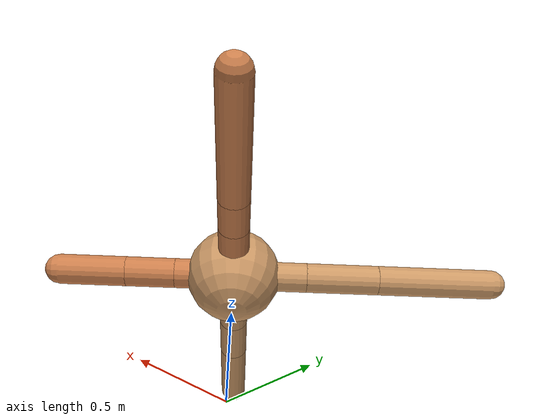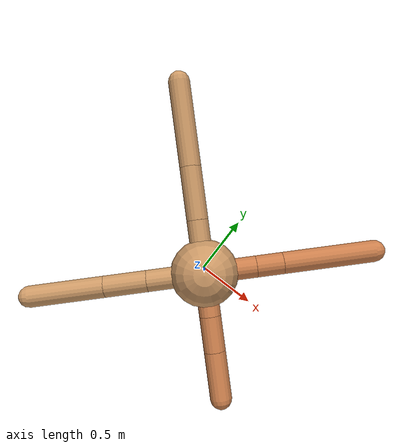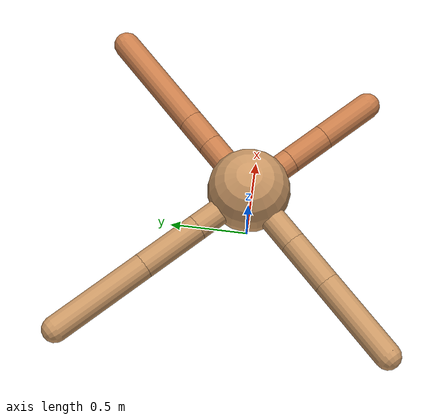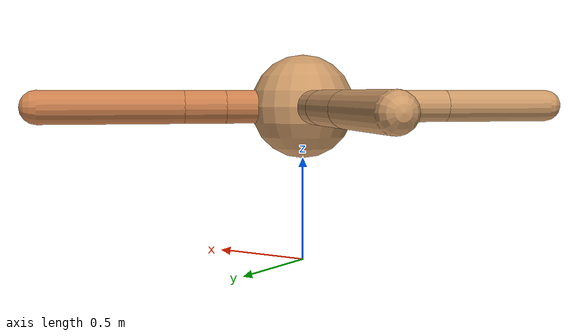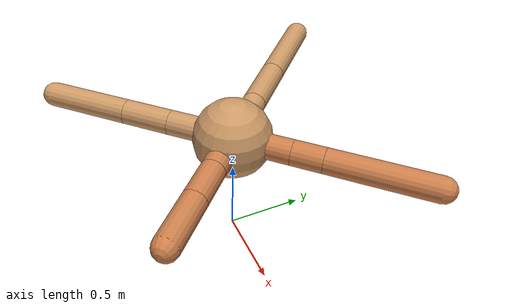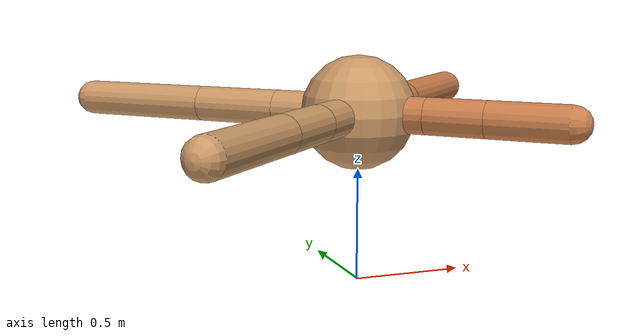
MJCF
<mujoco model="ant">
  <compiler angle="degree" coordinate="local" inertiafromgeom="true" />
  <option integrator="RK4" timestep="0.01" />
  <custom>
    <numeric data="0.0 0.0 0.55 1.0 0.0 0.0 0.0 0.0 1.0 0.0 -1.0 0.0 -1.0 0.0 1.0" name="init_qpos" />
  </custom>
  <default>
    <joint armature="1" damping="1" limited="true" />
    <geom conaffinity="0" condim="3" density="5.0" friction="1.5 0.1 0.1" margin="0.01" rgba="0.8 0.6 0.4 1" />
  </default>
  <worldbody>
    <body name="torso" pos="0 0 0.75">
      <geom name="torso_geom" pos="0 0 0" size="0.25" type="sphere" />

      <body name="front_left_leg" pos="0 0 0">
        <geom fromto="0.0 0.0 0.0 0.2682390950432038 0.2682390950432038 0.0" name="aux_1_geom" size="0.08" type="capsule" rgba=".8 .5 .3 1" />
        <body name="aux_1" pos="0.2682390950432038 0.2682390950432038 0.0">
          <joint axis="0 0 1" name="hip_1" pos="0.0 0.0 0.0" range="-40 40" type="hinge" />
          <geom fromto="0.0 0.0 0.0 0.13860775908321263 0.13860775908321263 0.0" name="left_leg_geom" size="0.08" type="capsule" rgba=".8 .5 .3 1" />
          <body pos="0.13860775908321263 0.13860775908321263 0.0" name="front_left_foot">
            <joint axis="-1 1 0" name="ankle_1" pos="0.0 0.0 0.0" range="30 100" type="hinge" />
            <geom fromto="0.0 0.0 0.0 0.47053135832411624 0.47053135832411624 0.0" name="left_ankle_geom" size="0.08" type="capsule" rgba=".8 .5 .3 1" />
          </body>
        </body>
      </body>
      <body name="front_right_leg" pos="0 0 0">
        <geom fromto="0.0 0.0 0.0 -0.27616491286210065 0.27616491286210065 0.0" name="aux_2_geom" size="0.08" type="capsule" />
        <body name="aux_2" pos="-0.27616491286210065 0.27616491286210065 0.0">
          <joint axis="0 0 1" name="hip_2" pos="0.0 0.0 0.0" range="-40 40" type="hinge" />
          <geom fromto="0.0 0.0 0.0 -0.2755461368284426 0.2755461368284426 0.0" name="right_leg_geom" size="0.08" type="capsule" />
          <body pos="-0.2755461368284426 0.2755461368284426 0.0" name="front_right_foot">
            <joint axis="1 1 0" name="ankle_2" pos="0.0 0.0 0.0" range="-100 -30" type="hinge" />
            <geom fromto="0.0 0.0 0.0 -0.44172837696977485 0.44172837696977485 0.0" name="right_ankle_geom" size="0.08" type="capsule" />
          </body>
        </body>
      </body>
      <body name="left_back_leg" pos="0 0 0">
        <geom fromto="0.0 0.0 0.0 -0.2969268892499361 -0.2969268892499361 0.0" name="aux_3_geom" size="0.08" type="capsule" />
        <body name="aux_3" pos="-0.2969268892499361 -0.2969268892499361 0.0">
          <joint axis="0 0 1" name="hip_3" pos="0.0 0.0 0.0" range="-40 40" type="hinge" />
          <geom fromto="0.0 0.0 0.0 -0.22131876963303274 -0.22131876963303274 0.0" name="back_leg_geom" size="0.08" type="capsule" />
          <body pos="-0.22131876963303274 -0.22131876963303274 0.0" name="left_back_foot">
            <joint axis="-1 1 0" name="ankle_3" pos="0.0 0.0 0.0" range="-100 -30" type="hinge" />
            <geom fromto="0.0 0.0 0.0 -0.38817614918094173 -0.38817614918094173 0.0" name="third_ankle_geom" size="0.08" type="capsule" />
          </body>
        </body>
      </body>
      <body name="right_back_leg" pos="0 0 0">
        <geom fromto="0.0 0.0 0.0 0.2205713592503775 -0.2205713592503775 0.0" name="aux_4_geom" size="0.08" type="capsule" rgba=".8 .5 .3 1" />
        <body name="aux_4" pos="0.2205713592503775 -0.2205713592503775 0.0">
          <joint axis="0 0 1" name="hip_4" pos="0.0 0.0 0.0" range="-40 40" type="hinge" />
          <geom fromto="0.0 0.0 0.0 0.18248859688063018 -0.18248859688063018 0.0" name="rightback_leg_geom" size="0.08" type="capsule" rgba=".8 .5 .3 1" />
          <body pos="0.18248859688063018 -0.18248859688063018 0.0" name="right_back_foot">
            <joint axis="1 1 0" name="ankle_4" pos="0.0 0.0 0.0" range="30 100" type="hinge" />
            <geom fromto="0.0 0.0 0.0 0.24548891479053545 -0.24548891479053545 0.0" name="fourth_ankle_geom" size="0.08" type="capsule" rgba=".8 .5 .3 1" />
          </body>
        </body>
      </body>
    </body>
  </worldbody>
  <actuator>
    <motor ctrllimited="true" ctrlrange="-1.0 1.0" joint="hip_4" gear="150" />
    <motor ctrllimited="true" ctrlrange="-1.0 1.0" joint="ankle_4" gear="150" />
    <motor ctrllimited="true" ctrlrange="-1.0 1.0" joint="hip_1" gear="150" />
    <motor ctrllimited="true" ctrlrange="-1.0 1.0" joint="ankle_1" gear="150" />
    <motor ctrllimited="true" ctrlrange="-1.0 1.0" joint="hip_2" gear="150" />
    <motor ctrllimited="true" ctrlrange="-1.0 1.0" joint="ankle_2" gear="150" />
    <motor ctrllimited="true" ctrlrange="-1.0 1.0" joint="hip_3" gear="150" />
    <motor ctrllimited="true" ctrlrange="-1.0 1.0" joint="ankle_3" gear="150" />
  </actuator>
</mujoco>
